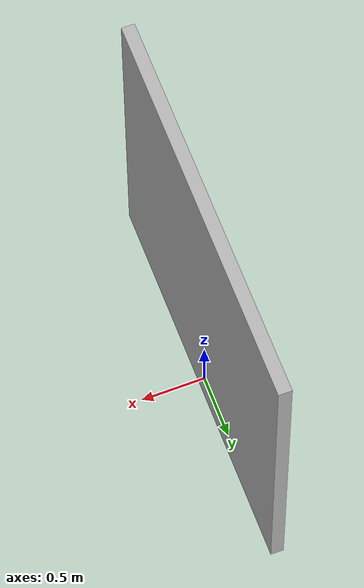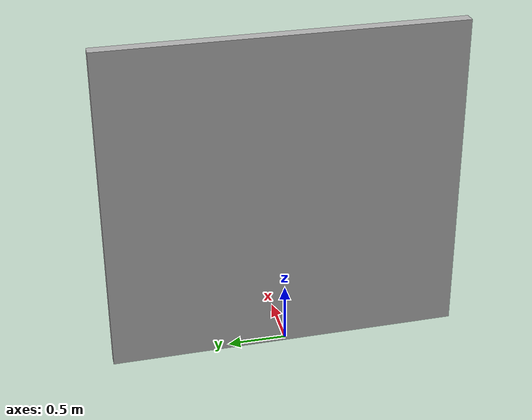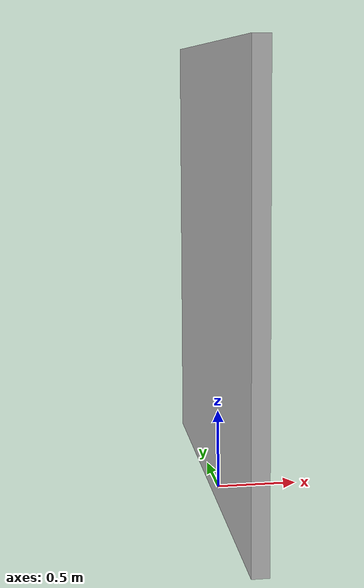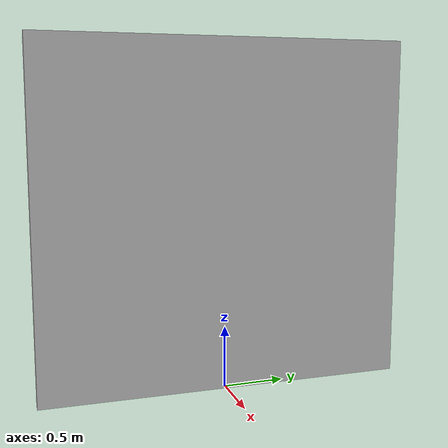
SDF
<?xml version="1.0" ?>

<sdf version="1.5">
<model name='wood_10_300_280'>
      <static>1</static>
      <link name="link">
        <pose>0 0 1.4 0 0 0</pose>

        <visual name="visual">
          <geometry>
            <box>
              <size>0.1 3.0 2.8</size>
            </box>
          </geometry>
          <material>
            <script>
              <uri>model:///home/stibipet/mrs_workspace/src/radiation_nodes/gazebo_rad_obstacle/gazebo_models/materials/scripts</uri>
              <uri>model:///home/stibipet/mrs_workspace/src/radiation_nodes/gazebo_rad_obstacle/gazebo_models/materials/textures/</uri>
              <name>wood/Image</name>
            </script>
          </material>
        </visual>

      </link>

      <plugin name='wood' filename='libgazebo_rad_obstacle.so'>
        <depth>0.1</depth>
        <width>3.0</width>
        <height>2.8</height>
        <material>wood</material>
        <density>6.22</density> <!-- g/cm^3 -->
        <mac60kev>3.843</mac60kev> <!-- cm^2/g -->
        <mac600kev>0.1138</mac600kev> <!-- cm^2/g -->
      </plugin>

    </model>
  </sdf>
